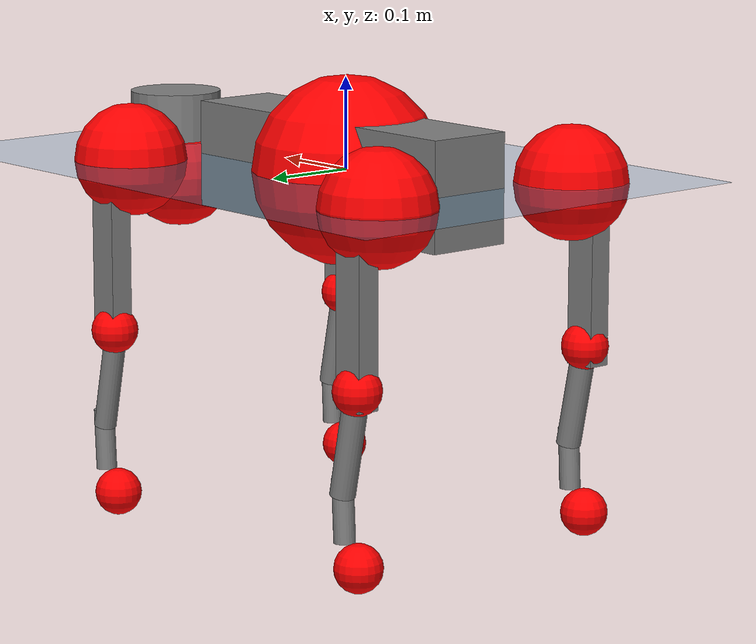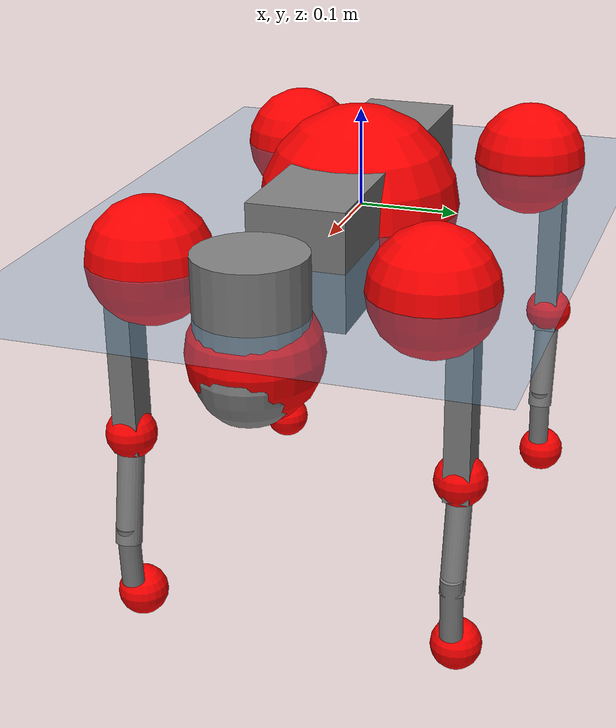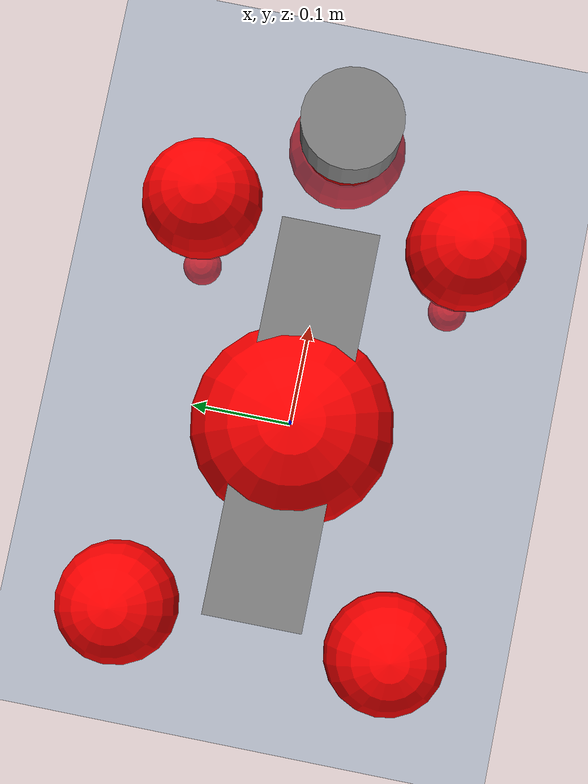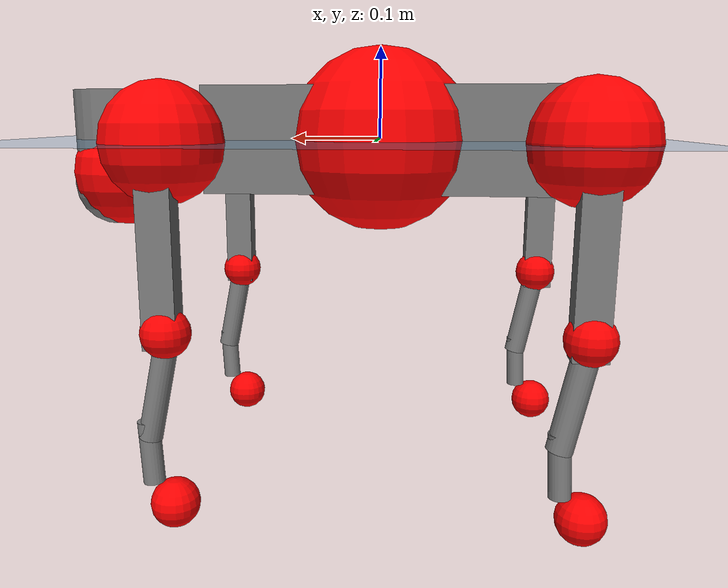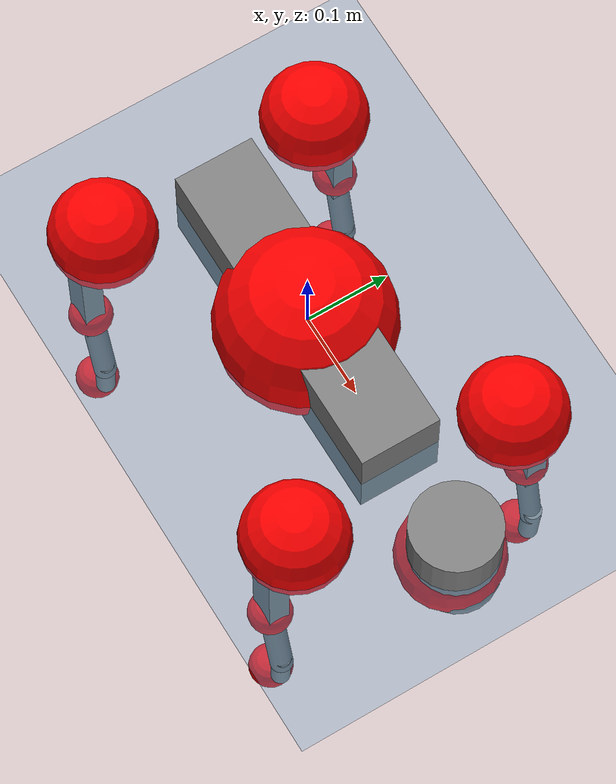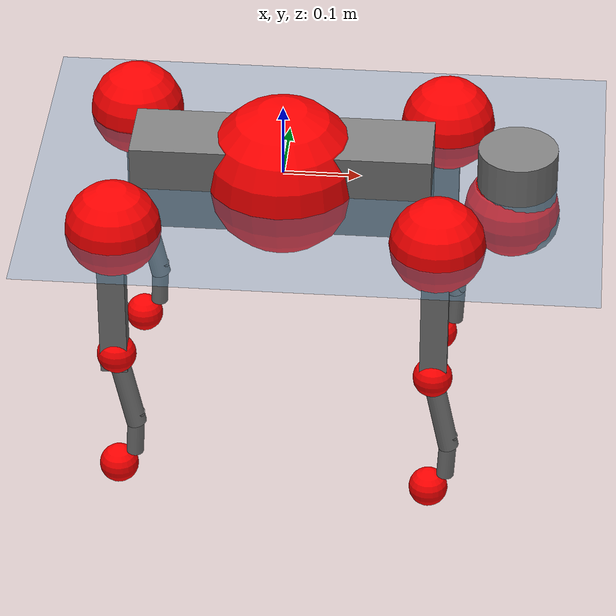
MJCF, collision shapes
<mujoco model="go2">
  <compiler angle="radian" assetdir="assets" balanceinertia="true" inertiafromgeom="false"/>

  <option timestep="0.005" density="1.2" viscosity="2e-05"/>

  <size nkey="1"/>

  <visual>
    <quality shadowsize="8192"/>
    <map shadowclip="0.5"/>
  </visual>

  <default>
    <default class="/">
      <geom contype="0" conaffinity="0" group="1" solref="-1000 -80"/>
      <site size="0.01 0.005 0.005" group="5"/>
      <general forcelimited="true" biastype="affine" gainprm="20" biasprm="0 -20 -0.5"/>
      <default class="go2">
        <joint armature="0.01" damping="0.01" frictionloss="0.2"/>
        <geom condim="1" margin="0.001"/>
        <default class="visual">
          <geom type="mesh" group="2"/>
        </default>
        <default class="collision">
          <geom group="3"/>
          <default class="foot">
            <geom size="0.022 0 0" condim="6" priority="1" friction="0.8 0.02 0.01" solimp="0.015 1 0.022"/>
          </default>
        </default>
        <default class="reward_collision_sphere">
          <geom group="5" rgba="1 0 0 1"/>
        </default>
      </default>
    </default>
  </default>

  <asset>
    <texture type="skybox" colorspace="auto" name="//unnamed_texture_0" builtin="gradient" rgb1="0.95 0.95 0.95" rgb2="0.95 0.95 0.95" width="100" height="600"/>
    <texture type="2d" colorspace="auto" name="texplane" builtin="checker" rgb1="0.345 0.575 0.748" rgb2="0.345 0.575 0.748" markrgb="1 1 1" width="512" height="512"/>
    <material name="MatPlane" class="/" texture="texplane" texuniform="true" texrepeat="2 2" specular="0.9"/>
    <material name="metal" class="/" rgba="0.9 0.95 0.95 1"/>
    <material name="black" class="/" rgba="0 0 0 1"/>
    <material name="white" class="/"/>
    <material name="gray" class="/" rgba="0.671705 0.692426 0.77427 1"/>
    <mesh name="base_0" class="/" file="base_0.obj"/>
    <mesh name="base_1" class="/" file="base_1.obj"/>
    <mesh name="base_2" class="/" file="base_2.obj"/>
    <mesh name="base_3" class="/" file="base_3.obj"/>
    <mesh name="base_4" class="/" file="base_4.obj"/>
    <mesh name="hip_0" class="/" file="hip_0.obj"/>
    <mesh name="hip_1" class="/" file="hip_1.obj"/>
    <mesh name="thigh_0" class="/" file="thigh_0.obj"/>
    <mesh name="thigh_1" class="/" file="thigh_1.obj"/>
    <mesh name="thigh_mirror_0" class="/" file="thigh_mirror_0.obj"/>
    <mesh name="thigh_mirror_1" class="/" file="thigh_mirror_1.obj"/>
    <mesh name="calf_0" class="/" file="calf_0.obj"/>
    <mesh name="calf_1" class="/" file="calf_1.obj"/>
    <mesh name="calf_mirror_0" class="/" file="calf_mirror_0.obj"/>
    <mesh name="calf_mirror_1" class="/" file="calf_mirror_1.obj"/>
    <mesh name="foot" class="/" file="foot.obj"/>
  </asset>

  <worldbody>
    <geom name="floor" class="/" size="100 100 0.125" type="plane" group="0" material="MatPlane"/>
    <light name="toplight_shadow" class="/" pos="0 0 5" dir="0.0990148 0.0990148 -0.990148" type="directional" ambient="0.04 0.04 0.04" diffuse="0.55 0.55 0.55" specular="0.12 0.12 0.12"/>
    <light name="toplight_fill" class="/" pos="0 0 5" dir="0.0990148 0.0990148 -0.990148" type="directional" castshadow="false" ambient="0.04 0.04 0.04" diffuse="0.3 0.3 0.3" specular="0.08 0.08 0.08"/>
    <body name="trunk" childclass="go2" pos="-0.000370848 -0.00179809 -0.000628851" quat="1 4.61122e-06 -2.32026e-05 -1.51703e-05">
      <inertial pos="0.024474 -0.00157905 -0.00510395" quat="-0.00340551 0.71736 -0.000562082 0.696694" mass="7.50391" diaginertia="0.140338 0.204539 0.0115757"/>
      <joint name="//unnamed_joint_0" type="free" armature="0" damping="0" frictionloss="0"/>
      <geom name="//unnamed_geom_1" class="visual" material="black" mesh="base_0"/>
      <geom name="//unnamed_geom_2" class="visual" material="black" mesh="base_1"/>
      <geom name="//unnamed_geom_3" class="visual" material="black" mesh="base_2"/>
      <geom name="//unnamed_geom_4" class="visual" material="white" mesh="base_3"/>
      <geom name="//unnamed_geom_5" class="visual" material="gray" mesh="base_4"/>
      <geom name="trunk_1" class="collision" size="0.193564 0.048108 0.0586557" type="box"/>
      <geom name="trunk_2" class="collision" size="0.0514524 0.0463071" pos="0.302689 0 0.00861307" type="cylinder"/>
      <geom name="trunk_3" class="collision" size="0.0483652" pos="0.311185 0 -0.0516784"/>
      <geom name="//unnamed_geom_9" class="reward_collision_sphere" size="0.102905"/>
      <geom name="//unnamed_geom_10" class="reward_collision_sphere" size="0.0617428" pos="0.297378 0 -0.0387588"/>
      <site name="imu" pos="-0.0173562 0.013633 0.0274199" size="0.0102905"/>
      <camera name="track" pos="0 -2.32754 0" quat="0.707107 0.707107 0 0" mode="trackcom"/>
      <camera name="ego_camera" pos="0.331364 0 0.0387588" quat="-0.5 -0.5 0.5 0.5"/>
      <body name="FL_hip" pos="0.207489 0.0530172 0.000148097" quat="1 8.18394e-05 -0.000342277 0.00050824">
        <inertial pos="-0.00598938 0.0026133 0.00240531" quat="0.497131 0.497702 0.505562 0.499561" mass="0.729084" diaginertia="0.00119505 0.00125415 0.000225327"/>
        <joint name="FL_hip_joint" pos="0 0 0" axis="0.999968 0.00803496 -0.000385313" stiffness="0.00102723" range="-1.07324 1.10414" armature="0.0106776" damping="0.0030128" frictionloss="0.230592"/>
        <geom name="//unnamed_geom_11" class="visual" material="metal" mesh="hip_0"/>
        <geom name="//unnamed_geom_12" class="visual" material="gray" mesh="hip_1"/>
        <geom name="//unnamed_geom_13" class="collision" size="0.0473362 0.0205809" pos="0 0.0931015 0" quat="0.707107 0.707107 0 0" type="cylinder"/>
        <geom name="//unnamed_geom_14" class="reward_collision_sphere" size="0.0617428" pos="0 0.0814638 0"/>
        <body name="FL_thigh" pos="-0.00172939 0.110155 -0.000677359" quat="0.999999 0.000144008 -0.000638368 -0.00106955">
          <inertial pos="-0.00172064 -0.0232684 -0.0275551" quat="0.829745 0.0847401 -0.0250707 0.551103" mass="1.25523" diaginertia="0.00788924 0.0123296 0.000400461"/>
          <joint name="FL_thigh_joint" pos="0 0 0" axis="-0.00750278 0.99994 -0.00792008" stiffness="0.00335043" range="-1.51336 3.49363" armature="0.0110499" damping="0.00978215" frictionloss="0.231855"/>
          <geom name="//unnamed_geom_15" class="visual" material="metal" mesh="thigh_0"/>
          <geom name="//unnamed_geom_16" class="visual" material="gray" mesh="thigh_1"/>
          <geom name="//unnamed_geom_17" class="collision" size="0.109594 0.0126058 0.0174938" pos="0 0 -0.0917292" quat="0.707107 0 0.707107 0" type="box"/>
          <body name="FL_calf" pos="-0.00284609 -0.000307491 -0.185951" quat="0.999999 -0.000111999 0.000654611 0.00126503">
            <inertial pos="0.00915756 -0.00041937 -0.120834" quat="0.709736 0.00152379 -0.00295939 0.70446" mass="0.264344" diaginertia="0.00197296 0.00313382 2.53706e-05"/>
            <joint name="FL_calf_joint" pos="0 0 0" axis="-0.00401883 0.999989 0.00223704" stiffness="0.00182411" range="-2.71241 -0.839637" armature="0.00898338" damping="0.00743202" frictionloss="0.203464"/>
            <geom name="//unnamed_geom_18" class="visual" material="gray" mesh="calf_0"/>
            <geom name="//unnamed_geom_19" class="visual" material="black" mesh="calf_1"/>
            <geom name="FL_calf0" class="collision" size="0.0123486 0.0617428" pos="0.00849652 0 -0.0516784" quat="0.994493 0 -0.104807 0" type="cylinder"/>
            <geom name="//unnamed_geom_21" class="collision" size="0.0113195 0.033444" pos="0.0212413 0 -0.127474" quat="0.999688 0 0.0249974 0" type="cylinder"/>
            <geom name="//unnamed_geom_22" class="visual" pos="0 0 -0.183458" quat="1 0 0 0" material="black" mesh="foot"/>
            <geom name="FL_foot" class="foot" size="0.0167572" pos="-0.00212413 0 -0.183458"/>
            <geom name="//unnamed_geom_24" class="reward_collision_sphere" size="0.0257262"/>
            <geom name="//unnamed_geom_25" class="reward_collision_sphere" size="0.0257262" pos="-0.00212413 0 -0.183458"/>
            <site name="FL_foot" class="foot" pos="-0.00212413 0 -0.183458" size="0.0102905"/>
          </body>
        </body>
      </body>
      <body name="FR_hip" pos="0.207146 -0.0569569 -0.00205931" quat="1 -0.000415221 -0.000237107 0.000574211">
        <inertial pos="-0.00772244 -0.00155861 0.00157785" quat="0.500886 0.503557 0.501274 0.494234" mass="0.723841" diaginertia="0.0011522 0.0012808 0.00023007"/>
        <joint name="FR_hip_joint" pos="0 0 0" axis="0.999923 0.00774078 0.00969632" range="-1.0466 1.0707" armature="0.0113159" damping="0.0140376" frictionloss="0.231137"/>
        <geom name="//unnamed_geom_26" class="visual" pos="0 2.63492e-09 1.13017e-07" quat="4.63268e-05 1 0 0" material="metal" mesh="hip_0"/>
        <geom name="//unnamed_geom_27" class="visual" pos="0 4.27152e-09 -2.79535e-07" quat="4.63268e-05 1 0 0" material="gray" mesh="hip_1"/>
        <geom name="//unnamed_geom_28" class="collision" size="0.0473362 0.0205809" pos="0 -0.0931015 0" quat="0.707107 0.707107 0 0" type="cylinder"/>
        <geom name="//unnamed_geom_29" class="reward_collision_sphere" size="0.0617428" pos="0 -0.0814638 0"/>
        <body name="FR_thigh" pos="-6.16343e-05 -0.112241 -0.000712826" quat="0.999999 0.00107955 0.000266176 -0.000960181">
          <inertial pos="-0.0062435 0.0267154 -0.0272453" quat="0.548832 -0.0292428 0.0938537 0.830133" mass="1.31183" diaginertia="0.0080988 0.0126385 0.000409869"/>
          <joint name="FR_thigh_joint" pos="0 0 0" axis="0.00177553 -0.999998 -0.000666925" range="-3.48922 1.57281" armature="0.0100838" damping="0.0224402" frictionloss="0.20716"/>
          <geom name="//unnamed_geom_30" class="visual" material="metal" mesh="thigh_mirror_0"/>
          <geom name="//unnamed_geom_31" class="visual" material="gray" mesh="thigh_mirror_1"/>
          <geom name="//unnamed_geom_32" class="collision" size="0.109594 0.0126058 0.0174938" pos="0 0 -0.0917292" quat="0.707107 0 0.707107 0" type="box"/>
          <body name="FR_calf" pos="-0.000485159 -0.00147119 -0.185353" quat="1 0.000384576 0.00030376 -0.00011418">
            <inertial pos="0.00943603 0.000623274 -0.119697" quat="0.699396 -0.0160253 0.00387306 0.714544" mass="0.260984" diaginertia="0.00204854 0.00314535 2.59088e-05"/>
            <joint name="FR_calf_joint" pos="0 0 0" axis="-3.334e-05 -0.999996 -0.00273589" range="0.845191 2.69904" armature="0.0103713" damping="0.0093133" frictionloss="0.194232"/>
            <geom name="//unnamed_geom_33" class="visual" material="gray" mesh="calf_mirror_0"/>
            <geom name="//unnamed_geom_34" class="visual" material="black" mesh="calf_mirror_1"/>
            <geom name="FR_calf0" class="collision" size="0.0133776 0.0617428" pos="0.0106207 0 -0.0516784" quat="0.995004 0 -0.0998334 0" type="cylinder"/>
            <geom name="//unnamed_geom_36" class="collision" size="0.0113195 0.033444" pos="0.0212413 0 -0.127474" quat="0.999688 0 0.0249974 0" type="cylinder"/>
            <geom name="//unnamed_geom_37" class="visual" pos="0 0 -0.183458" quat="1 0 0 0" material="black" mesh="foot"/>
            <geom name="FR_foot" class="foot" size="0.0201648" pos="-0.00212413 0 -0.183458"/>
            <geom name="//unnamed_geom_39" class="reward_collision_sphere" size="0.0257262"/>
            <geom name="//unnamed_geom_40" class="reward_collision_sphere" size="0.0257262" pos="-0.00212413 0 -0.183458"/>
            <site name="FR_foot" class="foot" pos="-0.00212413 0 -0.183458" size="0.0102905"/>
          </body>
        </body>
      </body>
      <body name="RL_hip" pos="-0.205842 0.0539504 0.00187826" quat="0.999999 -0.000954326 0.000386685 -0.000518731">
        <inertial pos="0.0062939 0.000935647 0.00262895" quat="0.498476 0.497256 0.497736 0.506475" mass="0.783354" diaginertia="0.00124259 0.00131675 0.000234667"/>
        <joint name="RL_hip_joint" pos="0 0 0" axis="-0.999649 -0.0263813 0.00241718" range="-1.01946 0.989728" armature="0.0105991" damping="0.00554914" frictionloss="0.2159"/>
        <geom name="//unnamed_geom_41" class="visual" pos="-1.74892e-09 0 -3.42828e-07" quat="4.63268e-05 0 1 0" material="metal" mesh="hip_0"/>
        <geom name="//unnamed_geom_42" class="visual" pos="-2.8352e-09 0 -3.0404e-07" quat="4.63268e-05 0 1 0" material="gray" mesh="hip_1"/>
        <geom name="//unnamed_geom_43" class="collision" size="0.0473362 0.0205809" pos="0 0.0931015 0" quat="0.707107 0.707107 0 0" type="cylinder"/>
        <geom name="//unnamed_geom_44" class="reward_collision_sphere" size="0.0617428" pos="0 0.0814638 0"/>
        <body name="RL_thigh" pos="-0.00218068 0.110765 0.000552523" quat="1 -1.26548e-05 -0.000405605 0.000448774">
          <inertial pos="-0.00319136 -0.0251118 -0.028313" quat="0.831478 0.0714583 -0.0205719 0.550559" mass="1.27767" diaginertia="0.00811118 0.0132999 0.000433106"/>
          <joint name="RL_thigh_joint" pos="0 0 0" axis="-0.00411329 0.999899 0.0136127" stiffness="0.00279332" range="-0.559688 4.59074" armature="0.00908305" damping="0" frictionloss="0.212206"/>
          <geom name="//unnamed_geom_45" class="visual" material="metal" mesh="thigh_0"/>
          <geom name="//unnamed_geom_46" class="visual" material="gray" mesh="thigh_1"/>
          <geom name="//unnamed_geom_47" class="collision" size="0.109594 0.0126058 0.0174938" pos="0 0 -0.0917292" quat="0.707107 0 0.707107 0" type="box"/>
          <body name="RL_calf" pos="-0.00137639 0.000760227 -0.182099" quat="1 0.000492458 -0.000371027 0.000244133">
            <inertial pos="0.00729518 -0.000397789 -0.121847" quat="0.70784 0.00434917 -0.00439555 0.706346" mass="0.280579" diaginertia="0.0021052 0.00326681 2.60828e-05"/>
            <joint name="RL_calf_joint" pos="0 0 0" axis="-0.00575721 0.999949 -0.00825382" stiffness="0.00147016" range="-2.73486 -0.874841" armature="0.00978422" damping="0" frictionloss="0.210744"/>
            <geom name="//unnamed_geom_48" class="visual" material="gray" mesh="calf_0"/>
            <geom name="//unnamed_geom_49" class="visual" material="black" mesh="calf_1"/>
            <geom name="RL_calf0" class="collision" size="0.0133776 0.0617428" pos="0.0106207 0 -0.0516784" quat="0.995004 0 -0.0998334 0" type="cylinder"/>
            <geom name="//unnamed_geom_51" class="collision" size="0.0113195 0.033444" pos="0.0212413 0 -0.127474" quat="0.999688 0 0.0249974 0" type="cylinder"/>
            <geom name="//unnamed_geom_52" class="visual" pos="0 0 -0.183458" quat="1 0 0 0" material="black" mesh="foot"/>
            <geom name="RL_foot" class="foot" size="0.0223629" pos="-0.00212413 0 -0.183458"/>
            <geom name="//unnamed_geom_54" class="reward_collision_sphere" size="0.0257262"/>
            <geom name="//unnamed_geom_55" class="reward_collision_sphere" size="0.0257262" pos="-0.00212413 0 -0.183458"/>
            <site name="RL_foot" class="foot" pos="-0.00212413 0 -0.183458" size="0.0102905"/>
          </body>
        </body>
      </body>
      <body name="RR_hip" pos="-0.204296 -0.0534438 -0.00196199" quat="1 -0.000398195 0.000239557 1.78175e-05">
        <inertial pos="0.00715908 -0.0009469 -0.00273763" quat="0.500992 0.499557 0.491341 0.50797" mass="0.754405" diaginertia="0.0012651 0.00135735 0.000236137"/>
        <joint name="RR_hip_joint" pos="0 0 0" axis="-0.999999 -0.000999677 0.000321181" stiffness="0.0127094" range="-1.04353 1.03882" armature="0.0104845" damping="0.00443787" frictionloss="0.201497"/>
        <geom name="//unnamed_geom_56" class="visual" pos="1.75244e-09 2.63492e-09 -4.55845e-07" quat="2.14617e-09 4.63268e-05 4.63268e-05 -1" material="metal" mesh="hip_0"/>
        <geom name="//unnamed_geom_57" class="visual" pos="2.82649e-09 4.27152e-09 -2.45051e-08" quat="2.14617e-09 4.63268e-05 4.63268e-05 -1" material="gray" mesh="hip_1"/>
        <geom name="//unnamed_geom_58" class="collision" size="0.0473362 0.0205809" pos="0 -0.0931015 0" quat="0.707107 0.707107 0 0" type="cylinder"/>
        <geom name="//unnamed_geom_59" class="reward_collision_sphere" size="0.0617428" pos="0 -0.0814638 0"/>
        <body name="RR_thigh" pos="-0.000178326 -0.109274 0.001326" quat="1 0.000435667 0.000286061 0.000113045">
          <inertial pos="-0.0039074 0.0254633 -0.0256053" quat="0.555279 -0.0168039 0.0876999 0.826857" mass="1.19854" diaginertia="0.00770549 0.0119161 0.00040235"/>
          <joint name="RR_thigh_joint" pos="0 0 0" axis="0.00670031 -0.999977 0.000402721" range="-4.53118 0.579949" armature="0.0108134" damping="0.0060176" frictionloss="0.213396"/>
          <geom name="//unnamed_geom_60" class="visual" material="metal" mesh="thigh_mirror_0"/>
          <geom name="//unnamed_geom_61" class="visual" material="gray" mesh="thigh_mirror_1"/>
          <geom name="//unnamed_geom_62" class="collision" size="0.109594 0.0126058 0.0174938" pos="0 0 -0.0917292" quat="0.707107 0 0.707107 0" type="box"/>
          <body name="RR_calf" pos="0.00219665 0.00148762 -0.18153" quat="0.999999 1.78596e-05 0.00121569 0.000574228">
            <inertial pos="0.00524227 0.000829324 -0.123534" quat="0.702876 0.00487739 -0.00730276 0.711258" mass="0.264828" diaginertia="0.0020158 0.00303058 2.54164e-05"/>
            <joint name="RR_calf_joint" pos="0 0 0" axis="-0.00113355 -0.999984 0.00562704" range="0.805722 2.72925" armature="0.00999214" damping="0.0108671" frictionloss="0.204233"/>
            <geom name="//unnamed_geom_63" class="visual" material="gray" mesh="calf_mirror_0"/>
            <geom name="//unnamed_geom_64" class="visual" material="black" mesh="calf_mirror_1"/>
            <geom name="RR_calf0" class="collision" size="0.0133776 0.0617428" pos="0.0106207 0 -0.0516784" quat="0.995004 0 -0.0998334 0" type="cylinder"/>
            <geom name="//unnamed_geom_66" class="collision" size="0.0113195 0.033444" pos="0.0212413 0 -0.127474" quat="0.999688 0 0.0249974 0" type="cylinder"/>
            <geom name="//unnamed_geom_67" class="visual" pos="0 0 -0.183458" quat="1 0 0 0" material="black" mesh="foot"/>
            <geom name="RR_foot" class="foot" size="0.0206855" pos="-0.00212413 0 -0.183458"/>
            <geom name="//unnamed_geom_69" class="reward_collision_sphere" size="0.0257262"/>
            <geom name="//unnamed_geom_70" class="reward_collision_sphere" size="0.0257262" pos="-0.00212413 0 -0.183458"/>
            <site name="RR_foot" class="foot" pos="-0.00212413 0 -0.183458" size="0.0102905"/>
          </body>
        </body>
      </body>
    </body>
  </worldbody>

  <contact>
    <pair class="/" geom1="floor" geom2="FL_foot" name="//unnamed_contact_0"/>
    <pair class="/" geom1="floor" geom2="FR_foot" name="//unnamed_contact_1"/>
    <pair class="/" geom1="floor" geom2="RL_foot" name="//unnamed_contact_2"/>
    <pair class="/" geom1="floor" geom2="RR_foot" name="//unnamed_contact_3"/>
  </contact>

  <actuator>
    <general name="FL_hip" class="/" joint="FL_hip_joint" forcerange="-23.4029 23.4029" gainprm="20.6976" biasprm="0 -20.6976 -0.547189"/>
    <general name="FL_thigh" class="/" joint="FL_thigh_joint" forcerange="-22.1469 22.1469" gainprm="20.6976" biasprm="0 -20.6976 -0.547189"/>
    <general name="FL_calf" class="/" joint="FL_calf_joint" forcerange="-42.8486 42.8486" gainprm="20.6976" biasprm="0 -20.6976 -0.547189"/>
    <general name="FR_hip" class="/" joint="FR_hip_joint" forcerange="-24.4426 24.4426" gainprm="20.6976" biasprm="0 -20.6976 -0.547189"/>
    <general name="FR_thigh" class="/" joint="FR_thigh_joint" forcerange="-24.4137 24.4137" gainprm="20.6976" biasprm="0 -20.6976 -0.547189"/>
    <general name="FR_calf" class="/" joint="FR_calf_joint" forcerange="-50.6021 50.6021" gainprm="20.6976" biasprm="0 -20.6976 -0.547189"/>
    <general name="RL_hip" class="/" joint="RL_hip_joint" forcerange="-23.0055 23.0055" gainprm="20.6976" biasprm="0 -20.6976 -0.547189"/>
    <general name="RL_thigh" class="/" joint="RL_thigh_joint" forcerange="-24.6233 24.6233" gainprm="20.6976" biasprm="0 -20.6976 -0.547189"/>
    <general name="RL_calf" class="/" joint="RL_calf_joint" forcerange="-41.8891 41.8891" gainprm="20.6976" biasprm="0 -20.6976 -0.547189"/>
    <general name="RR_hip" class="/" joint="RR_hip_joint" forcerange="-24.842 24.842" gainprm="20.6976" biasprm="0 -20.6976 -0.547189"/>
    <general name="RR_thigh" class="/" joint="RR_thigh_joint" forcerange="-24.3655 24.3655" gainprm="20.6976" biasprm="0 -20.6976 -0.547189"/>
    <general name="RR_calf" class="/" joint="RR_calf_joint" forcerange="-47.5065 47.5065" gainprm="20.6976" biasprm="0 -20.6976 -0.547189"/>
  </actuator>

  <sensor>
    <gyro site="imu" name="imu_angular_velocity"/>
    <velocimeter site="imu" name="imu_linear_velocity"/>
    <framelinvel objtype="site" objname="FL_foot" name="FL_foot_global_linear_velocity"/>
    <framelinvel objtype="site" objname="FR_foot" name="FR_foot_global_linear_velocity"/>
    <framelinvel objtype="site" objname="RL_foot" name="RL_foot_global_linear_velocity"/>
    <framelinvel objtype="site" objname="RR_foot" name="RR_foot_global_linear_velocity"/>
  </sensor>

  <keyframe>
    <key name="home" qpos="0 0 0.325 1 0 0 0 0.1 0.8 -1.5 -0.1 -0.8 1.5 -0.1 0.8 -1.5 0.1 -0.8 1.5"/>
  </keyframe>
</mujoco>
